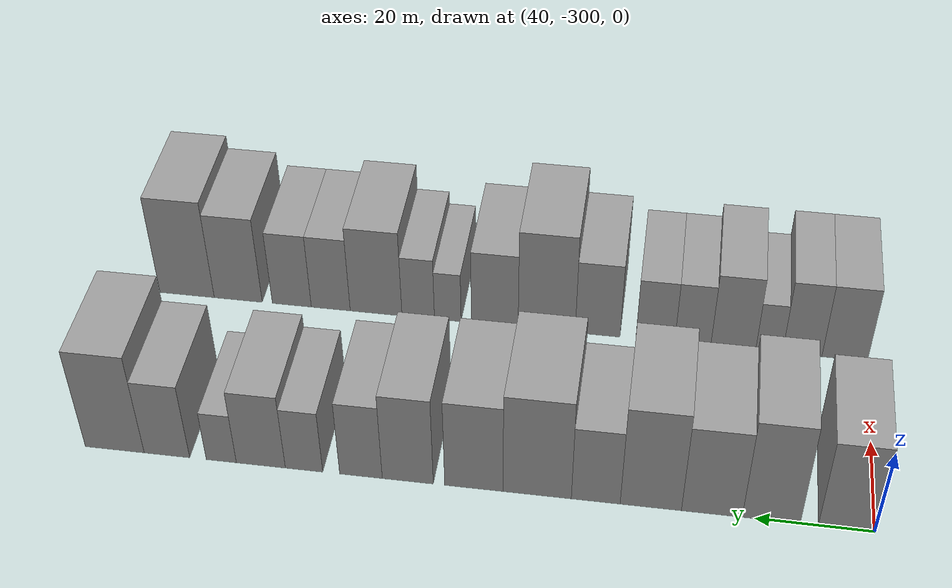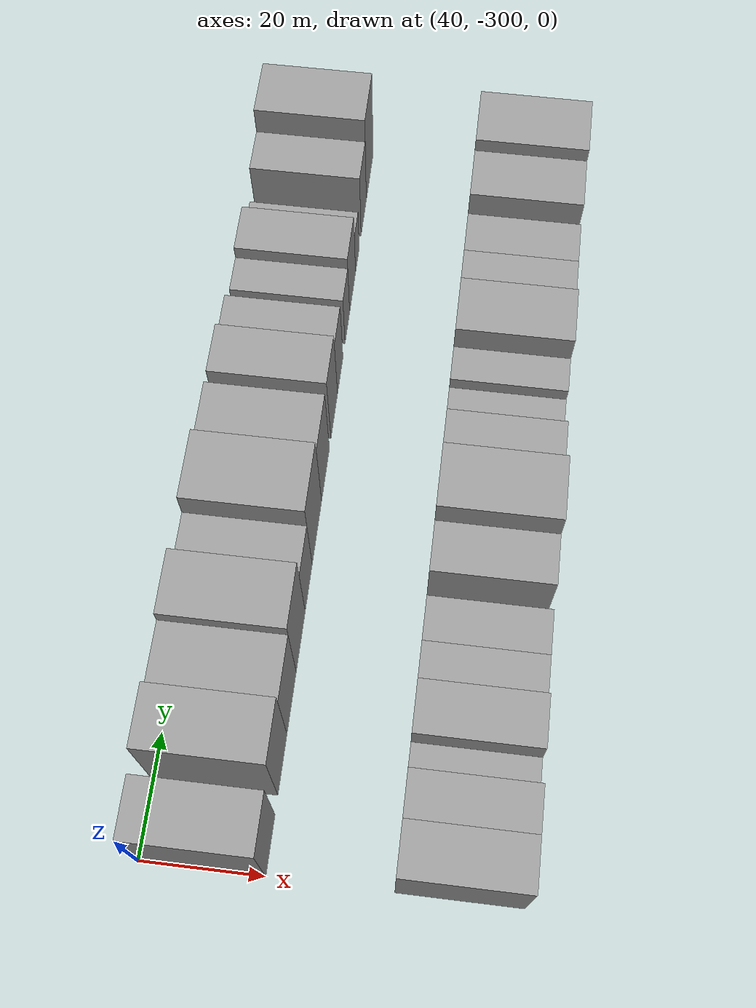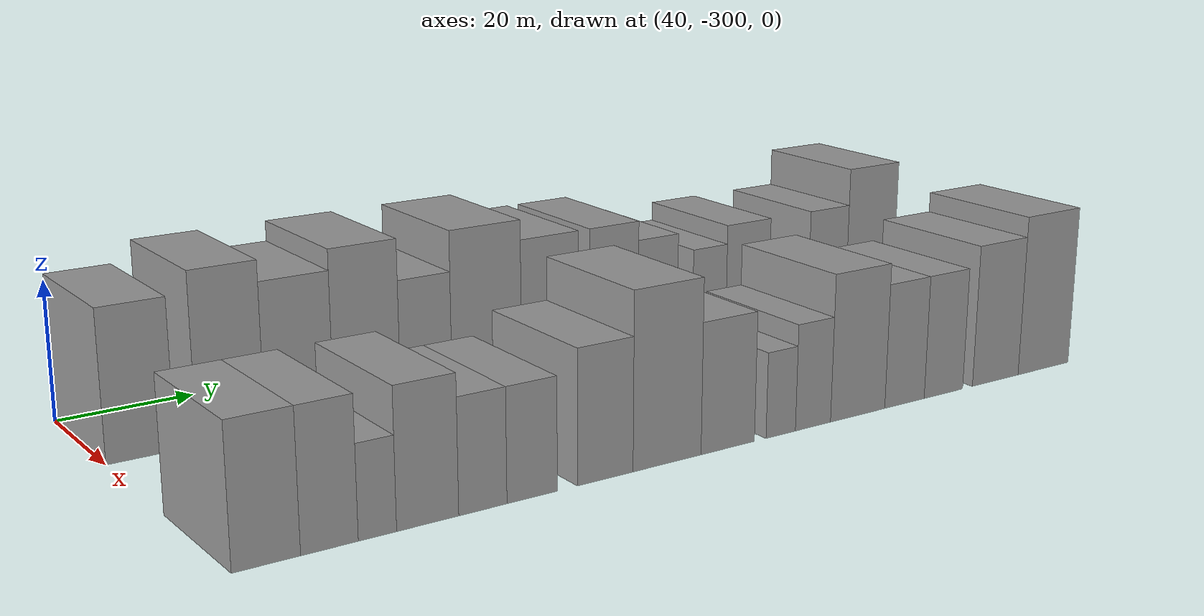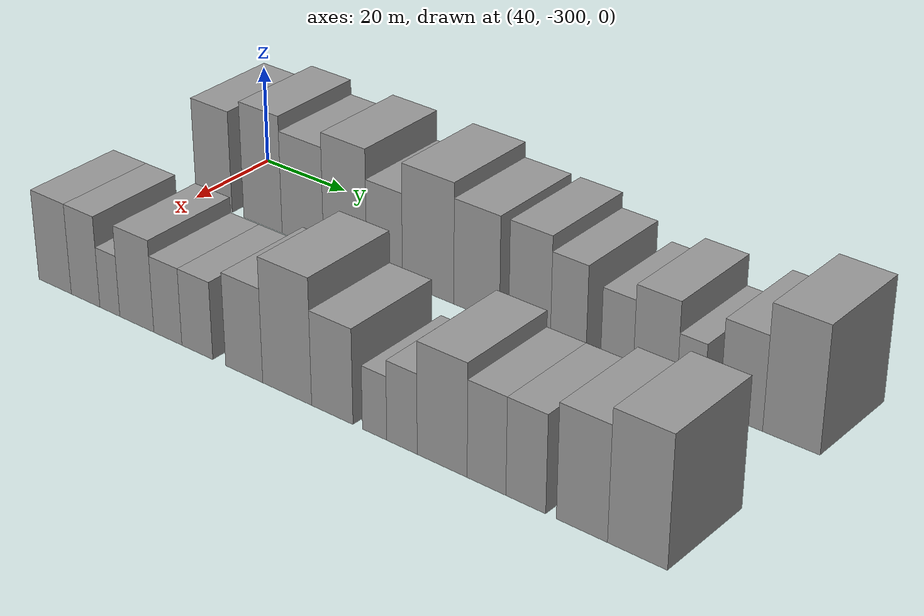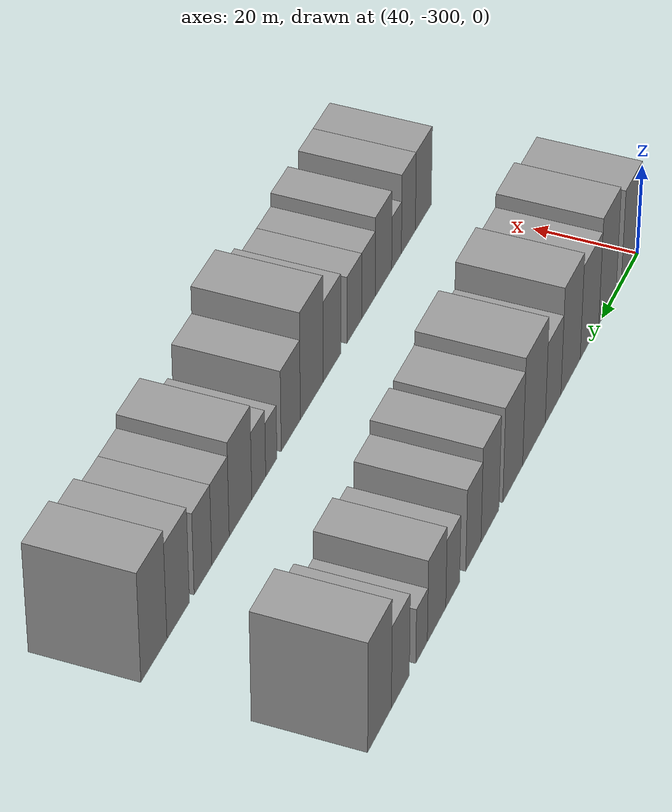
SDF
<sdf version="1.6">
 <world name="default">
  <model name="building_1">
   <static>1</static>
   <pose>50.0000 -295.3019 0 0.000000 0.000000 0.000000</pose>
   <link name="link">
    <pose>0 0 10.50 0 0 0</pose>
    <collision name="collision"><geometry><box><size>20.0000 9.3963 21.0000</size></box></geometry></collision>
    <visual name="visual">
     <cast_shadows>0</cast_shadows>
     <geometry><box><size>20.0000 9.3963 21.0000</size></box></geometry>
     <material>
      <script>
       <uri>model://grey_wall/materials/scripts</uri>
       <uri>model://grey_wall/materials/textures</uri>
       <name>vrc/grey_wall</name>
      </script>
     </material>
    </visual>
   </link>
  </model>
  <model name="building_2">
   <static>1</static>
   <pose>50.0000 -282.7249 0 0.000000 0.000000 0.000000</pose>
   <link name="link">
    <pose>0 0 12.00 0 0 0</pose>
    <collision name="collision"><geometry><box><size>20.0000 9.7576 24.0000</size></box></geometry></collision>
    <visual name="visual">
     <cast_shadows>0</cast_shadows>
     <geometry><box><size>20.0000 9.7576 24.0000</size></box></geometry>
     <material>
      <script>
       <uri>model://grey_wall/materials/scripts</uri>
       <uri>model://grey_wall/materials/textures</uri>
       <name>vrc/grey_wall</name>
      </script>
     </material>
    </visual>
   </link>
  </model>
  <model name="building_3">
   <static>1</static>
   <pose>50.0000 -272.7034 0 0.000000 0.000000 0.000000</pose>
   <link name="link">
    <pose>0 0 10.50 0 0 0</pose>
    <collision name="collision"><geometry><box><size>20.0000 10.2854 21.0000</size></box></geometry></collision>
    <visual name="visual">
     <cast_shadows>0</cast_shadows>
     <geometry><box><size>20.0000 10.2854 21.0000</size></box></geometry>
     <material>
      <script>
       <uri>model://grey_wall/materials/scripts</uri>
       <uri>model://grey_wall/materials/textures</uri>
       <name>vrc/grey_wall</name>
      </script>
     </material>
    </visual>
   </link>
  </model>
  <model name="building_4">
   <static>1</static>
   <pose>50.0000 -262.3470 0 0.000000 0.000000 0.000000</pose>
   <link name="link">
    <pose>0 0 12.00 0 0 0</pose>
    <collision name="collision"><geometry><box><size>20.0000 10.4274 24.0000</size></box></geometry></collision>
    <visual name="visual">
     <cast_shadows>0</cast_shadows>
     <geometry><box><size>20.0000 10.4274 24.0000</size></box></geometry>
     <material>
      <script>
       <uri>model://grey_wall/materials/scripts</uri>
       <uri>model://grey_wall/materials/textures</uri>
       <name>vrc/grey_wall</name>
      </script>
     </material>
    </visual>
   </link>
  </model>
  <model name="building_5">
   <static>1</static>
   <pose>50.0000 -252.9480 0 0.000000 0.000000 0.000000</pose>
   <link name="link">
    <pose>0 0 9.00 0 0 0</pose>
    <collision name="collision"><geometry><box><size>20.0000 8.3706 18.0000</size></box></geometry></collision>
    <visual name="visual">
     <cast_shadows>0</cast_shadows>
     <geometry><box><size>20.0000 8.3706 18.0000</size></box></geometry>
     <material>
      <script>
       <uri>model://grey_wall/materials/scripts</uri>
       <uri>model://grey_wall/materials/textures</uri>
       <name>vrc/grey_wall</name>
      </script>
     </material>
    </visual>
   </link>
  </model>
  <model name="building_6">
   <static>1</static>
   <pose>50.0000 -242.8675 0 0.000000 0.000000 0.000000</pose>
   <link name="link">
    <pose>0 0 12.00 0 0 0</pose>
    <collision name="collision"><geometry><box><size>20.0000 11.7904 24.0000</size></box></geometry></collision>
    <visual name="visual">
     <cast_shadows>0</cast_shadows>
     <geometry><box><size>20.0000 11.7904 24.0000</size></box></geometry>
     <material>
      <script>
       <uri>model://grey_wall/materials/scripts</uri>
       <uri>model://grey_wall/materials/textures</uri>
       <name>vrc/grey_wall</name>
      </script>
     </material>
    </visual>
   </link>
  </model>
  <model name="building_7">
   <static>1</static>
   <pose>50.0000 -231.9022 0 0.000000 0.000000 0.000000</pose>
   <link name="link">
    <pose>0 0 10.50 0 0 0</pose>
    <collision name="collision"><geometry><box><size>20.0000 10.1402 21.0000</size></box></geometry></collision>
    <visual name="visual">
     <cast_shadows>0</cast_shadows>
     <geometry><box><size>20.0000 10.1402 21.0000</size></box></geometry>
     <material>
      <script>
       <uri>model://grey_wall/materials/scripts</uri>
       <uri>model://grey_wall/materials/textures</uri>
       <name>vrc/grey_wall</name>
      </script>
     </material>
    </visual>
   </link>
  </model>
  <model name="building_8">
   <static>1</static>
   <pose>50.0000 -220.3504 0 0.000000 0.000000 0.000000</pose>
   <link name="link">
    <pose>0 0 10.50 0 0 0</pose>
    <collision name="collision"><geometry><box><size>20.0000 8.9634 21.0000</size></box></geometry></collision>
    <visual name="visual">
     <cast_shadows>0</cast_shadows>
     <geometry><box><size>20.0000 8.9634 21.0000</size></box></geometry>
     <material>
      <script>
       <uri>model://grey_wall/materials/scripts</uri>
       <uri>model://grey_wall/materials/textures</uri>
       <name>vrc/grey_wall</name>
      </script>
     </material>
    </visual>
   </link>
  </model>
  <model name="building_9">
   <static>1</static>
   <pose>50.0000 -212.1136 0 0.000000 0.000000 0.000000</pose>
   <link name="link">
    <pose>0 0 9.00 0 0 0</pose>
    <collision name="collision"><geometry><box><size>20.0000 7.5102 18.0000</size></box></geometry></collision>
    <visual name="visual">
     <cast_shadows>0</cast_shadows>
     <geometry><box><size>20.0000 7.5102 18.0000</size></box></geometry>
     <material>
      <script>
       <uri>model://grey_wall/materials/scripts</uri>
       <uri>model://grey_wall/materials/textures</uri>
       <name>vrc/grey_wall</name>
      </script>
     </material>
    </visual>
   </link>
  </model>
  <model name="building_10">
   <static>1</static>
   <pose>50.0000 -202.0355 0 0.000000 0.000000 0.000000</pose>
   <link name="link">
    <pose>0 0 7.50 0 0 0</pose>
    <collision name="collision"><geometry><box><size>20.0000 6.6459 15.0000</size></box></geometry></collision>
    <visual name="visual">
     <cast_shadows>0</cast_shadows>
     <geometry><box><size>20.0000 6.6459 15.0000</size></box></geometry>
     <material>
      <script>
       <uri>model://grey_wall/materials/scripts</uri>
       <uri>model://grey_wall/materials/textures</uri>
       <name>vrc/grey_wall</name>
      </script>
     </material>
    </visual>
   </link>
  </model>
  <model name="building_11">
   <static>1</static>
   <pose>50.0000 -194.3298 0 0.000000 0.000000 0.000000</pose>
   <link name="link">
    <pose>0 0 9.00 0 0 0</pose>
    <collision name="collision"><geometry><box><size>20.0000 8.7655 18.0000</size></box></geometry></collision>
    <visual name="visual">
     <cast_shadows>0</cast_shadows>
     <geometry><box><size>20.0000 8.7655 18.0000</size></box></geometry>
     <material>
      <script>
       <uri>model://grey_wall/materials/scripts</uri>
       <uri>model://grey_wall/materials/textures</uri>
       <name>vrc/grey_wall</name>
      </script>
     </material>
    </visual>
   </link>
  </model>
  <model name="building_12">
   <static>1</static>
   <pose>50.0000 -187.2509 0 0.000000 0.000000 0.000000</pose>
   <link name="link">
    <pose>0 0 6.00 0 0 0</pose>
    <collision name="collision"><geometry><box><size>20.0000 5.3923 12.0000</size></box></geometry></collision>
    <visual name="visual">
     <cast_shadows>0</cast_shadows>
     <geometry><box><size>20.0000 5.3923 12.0000</size></box></geometry>
     <material>
      <script>
       <uri>model://grey_wall/materials/scripts</uri>
       <uri>model://grey_wall/materials/textures</uri>
       <name>vrc/grey_wall</name>
      </script>
     </material>
    </visual>
   </link>
  </model>
  <model name="building_13">
   <static>1</static>
   <pose>50.0000 -177.4368 0 0.000000 0.000000 0.000000</pose>
   <link name="link">
    <pose>0 0 9.00 0 0 0</pose>
    <collision name="collision"><geometry><box><size>20.0000 8.2360 18.0000</size></box></geometry></collision>
    <visual name="visual">
     <cast_shadows>0</cast_shadows>
     <geometry><box><size>20.0000 8.2360 18.0000</size></box></geometry>
     <material>
      <script>
       <uri>model://grey_wall/materials/scripts</uri>
       <uri>model://grey_wall/materials/textures</uri>
       <name>vrc/grey_wall</name>
      </script>
     </material>
    </visual>
   </link>
  </model>
  <model name="building_14">
   <static>1</static>
   <pose>50.0000 -167.9649 0 0.000000 0.000000 0.000000</pose>
   <link name="link">
    <pose>0 0 12.00 0 0 0</pose>
    <collision name="collision"><geometry><box><size>20.0000 10.7077 24.0000</size></box></geometry></collision>
    <visual name="visual">
     <cast_shadows>0</cast_shadows>
     <geometry><box><size>20.0000 10.7077 24.0000</size></box></geometry>
     <material>
      <script>
       <uri>model://grey_wall/materials/scripts</uri>
       <uri>model://grey_wall/materials/textures</uri>
       <name>vrc/grey_wall</name>
      </script>
     </material>
    </visual>
   </link>
  </model>
  <model name="building_59">
   <static>1</static>
   <pose>90.0000 -295.8047 0 0.000000 0.000000 0.000000</pose>
   <link name="link">
    <pose>0 0 9.00 0 0 0</pose>
    <collision name="collision"><geometry><box><size>20.0000 8.3906 18.0000</size></box></geometry></collision>
    <visual name="visual">
     <cast_shadows>0</cast_shadows>
     <geometry><box><size>20.0000 8.3906 18.0000</size></box></geometry>
     <material>
      <script>
       <uri>model://grey_wall/materials/scripts</uri>
       <uri>model://grey_wall/materials/textures</uri>
       <name>vrc/grey_wall</name>
      </script>
     </material>
    </visual>
   </link>
  </model>
  <model name="building_60">
   <static>1</static>
   <pose>90.0000 -287.9691 0 0.000000 0.000000 0.000000</pose>
   <link name="link">
    <pose>0 0 9.00 0 0 0</pose>
    <collision name="collision"><geometry><box><size>20.0000 7.2805 18.0000</size></box></geometry></collision>
    <visual name="visual">
     <cast_shadows>0</cast_shadows>
     <geometry><box><size>20.0000 7.2805 18.0000</size></box></geometry>
     <material>
      <script>
       <uri>model://grey_wall/materials/scripts</uri>
       <uri>model://grey_wall/materials/textures</uri>
       <name>vrc/grey_wall</name>
      </script>
     </material>
    </visual>
   </link>
  </model>
  <model name="building_61">
   <static>1</static>
   <pose>90.0000 -281.8356 0 0.000000 0.000000 0.000000</pose>
   <link name="link">
    <pose>0 0 6.00 0 0 0</pose>
    <collision name="collision"><geometry><box><size>20.0000 4.9866 12.0000</size></box></geometry></collision>
    <visual name="visual">
     <cast_shadows>0</cast_shadows>
     <geometry><box><size>20.0000 4.9866 12.0000</size></box></geometry>
     <material>
      <script>
       <uri>model://grey_wall/materials/scripts</uri>
       <uri>model://grey_wall/materials/textures</uri>
       <name>vrc/grey_wall</name>
      </script>
     </material>
    </visual>
   </link>
  </model>
  <model name="building_62">
   <static>1</static>
   <pose>90.0000 -275.1544 0 0.000000 0.000000 0.000000</pose>
   <link name="link">
    <pose>0 0 9.00 0 0 0</pose>
    <collision name="collision"><geometry><box><size>20.0000 8.3758 18.0000</size></box></geometry></collision>
    <visual name="visual">
     <cast_shadows>0</cast_shadows>
     <geometry><box><size>20.0000 8.3758 18.0000</size></box></geometry>
     <material>
      <script>
       <uri>model://grey_wall/materials/scripts</uri>
       <uri>model://grey_wall/materials/textures</uri>
       <name>vrc/grey_wall</name>
      </script>
     </material>
    </visual>
   </link>
  </model>
  <model name="building_63">
   <static>1</static>
   <pose>90.0000 -267.5878 0 0.000000 0.000000 0.000000</pose>
   <link name="link">
    <pose>0 0 7.50 0 0 0</pose>
    <collision name="collision"><geometry><box><size>20.0000 6.7573 15.0000</size></box></geometry></collision>
    <visual name="visual">
     <cast_shadows>0</cast_shadows>
     <geometry><box><size>20.0000 6.7573 15.0000</size></box></geometry>
     <material>
      <script>
       <uri>model://grey_wall/materials/scripts</uri>
       <uri>model://grey_wall/materials/textures</uri>
       <name>vrc/grey_wall</name>
      </script>
     </material>
    </visual>
   </link>
  </model>
  <model name="building_64">
   <static>1</static>
   <pose>90.0000 -260.5547 0 0.000000 0.000000 0.000000</pose>
   <link name="link">
    <pose>0 0 7.50 0 0 0</pose>
    <collision name="collision"><geometry><box><size>20.0000 7.3090 15.0000</size></box></geometry></collision>
    <visual name="visual">
     <cast_shadows>0</cast_shadows>
     <geometry><box><size>20.0000 7.3090 15.0000</size></box></geometry>
     <material>
      <script>
       <uri>model://grey_wall/materials/scripts</uri>
       <uri>model://grey_wall/materials/textures</uri>
       <name>vrc/grey_wall</name>
      </script>
     </material>
    </visual>
   </link>
  </model>
  <model name="building_65">
   <static>1</static>
   <pose>90.0000 -249.6534 0 0.000000 0.000000 0.000000</pose>
   <link name="link">
    <pose>0 0 9.00 0 0 0</pose>
    <collision name="collision"><geometry><box><size>20.0000 8.4936 18.0000</size></box></geometry></collision>
    <visual name="visual">
     <cast_shadows>0</cast_shadows>
     <geometry><box><size>20.0000 8.4936 18.0000</size></box></geometry>
     <material>
      <script>
       <uri>model://grey_wall/materials/scripts</uri>
       <uri>model://grey_wall/materials/textures</uri>
       <name>vrc/grey_wall</name>
      </script>
     </material>
    </visual>
   </link>
  </model>
  <model name="building_66">
   <static>1</static>
   <pose>90.0000 -239.9584 0 0.000000 0.000000 0.000000</pose>
   <link name="link">
    <pose>0 0 12.00 0 0 0</pose>
    <collision name="collision"><geometry><box><size>20.0000 10.8964 24.0000</size></box></geometry></collision>
    <visual name="visual">
     <cast_shadows>0</cast_shadows>
     <geometry><box><size>20.0000 10.8964 24.0000</size></box></geometry>
     <material>
      <script>
       <uri>model://grey_wall/materials/scripts</uri>
       <uri>model://grey_wall/materials/textures</uri>
       <name>vrc/grey_wall</name>
      </script>
     </material>
    </visual>
   </link>
  </model>
  <model name="building_67">
   <static>1</static>
   <pose>90.0000 -230.0324 0 0.000000 0.000000 0.000000</pose>
   <link name="link">
    <pose>0 0 9.00 0 0 0</pose>
    <collision name="collision"><geometry><box><size>20.0000 8.9557 18.0000</size></box></geometry></collision>
    <visual name="visual">
     <cast_shadows>0</cast_shadows>
     <geometry><box><size>20.0000 8.9557 18.0000</size></box></geometry>
     <material>
      <script>
       <uri>model://grey_wall/materials/scripts</uri>
       <uri>model://grey_wall/materials/textures</uri>
       <name>vrc/grey_wall</name>
      </script>
     </material>
    </visual>
   </link>
  </model>
  <model name="building_68">
   <static>1</static>
   <pose>90.0000 -220.9861 0 0.000000 0.000000 0.000000</pose>
   <link name="link">
    <pose>0 0 6.00 0 0 0</pose>
    <collision name="collision"><geometry><box><size>20.0000 5.1369 12.0000</size></box></geometry></collision>
    <visual name="visual">
     <cast_shadows>0</cast_shadows>
     <geometry><box><size>20.0000 5.1369 12.0000</size></box></geometry>
     <material>
      <script>
       <uri>model://grey_wall/materials/scripts</uri>
       <uri>model://grey_wall/materials/textures</uri>
       <name>vrc/grey_wall</name>
      </script>
     </material>
    </visual>
   </link>
  </model>
  <model name="building_69">
   <static>1</static>
   <pose>90.0000 -215.2652 0 0.000000 0.000000 0.000000</pose>
   <link name="link">
    <pose>0 0 7.50 0 0 0</pose>
    <collision name="collision"><geometry><box><size>20.0000 6.3049 15.0000</size></box></geometry></collision>
    <visual name="visual">
     <cast_shadows>0</cast_shadows>
     <geometry><box><size>20.0000 6.3049 15.0000</size></box></geometry>
     <material>
      <script>
       <uri>model://grey_wall/materials/scripts</uri>
       <uri>model://grey_wall/materials/textures</uri>
       <name>vrc/grey_wall</name>
      </script>
     </material>
    </visual>
   </link>
  </model>
  <model name="building_70">
   <static>1</static>
   <pose>90.0000 -207.0639 0 0.000000 0.000000 0.000000</pose>
   <link name="link">
    <pose>0 0 10.50 0 0 0</pose>
    <collision name="collision"><geometry><box><size>20.0000 10.0977 21.0000</size></box></geometry></collision>
    <visual name="visual">
     <cast_shadows>0</cast_shadows>
     <geometry><box><size>20.0000 10.0977 21.0000</size></box></geometry>
     <material>
      <script>
       <uri>model://grey_wall/materials/scripts</uri>
       <uri>model://grey_wall/materials/textures</uri>
       <name>vrc/grey_wall</name>
      </script>
     </material>
    </visual>
   </link>
  </model>
  <model name="building_71">
   <static>1</static>
   <pose>90.0000 -198.2027 0 0.000000 0.000000 0.000000</pose>
   <link name="link">
    <pose>0 0 9.00 0 0 0</pose>
    <collision name="collision"><geometry><box><size>20.0000 7.6246 18.0000</size></box></geometry></collision>
    <visual name="visual">
     <cast_shadows>0</cast_shadows>
     <geometry><box><size>20.0000 7.6246 18.0000</size></box></geometry>
     <material>
      <script>
       <uri>model://grey_wall/materials/scripts</uri>
       <uri>model://grey_wall/materials/textures</uri>
       <name>vrc/grey_wall</name>
      </script>
     </material>
    </visual>
   </link>
  </model>
  <model name="building_72">
   <static>1</static>
   <pose>90.0000 -190.5527 0 0.000000 0.000000 0.000000</pose>
   <link name="link">
    <pose>0 0 9.00 0 0 0</pose>
    <collision name="collision"><geometry><box><size>20.0000 7.6754 18.0000</size></box></geometry></collision>
    <visual name="visual">
     <cast_shadows>0</cast_shadows>
     <geometry><box><size>20.0000 7.6754 18.0000</size></box></geometry>
     <material>
      <script>
       <uri>model://grey_wall/materials/scripts</uri>
       <uri>model://grey_wall/materials/textures</uri>
       <name>vrc/grey_wall</name>
      </script>
     </material>
    </visual>
   </link>
  </model>
  <model name="building_73">
   <static>1</static>
   <pose>90.0000 -179.9525 0 0.000000 0.000000 0.000000</pose>
   <link name="link">
    <pose>0 0 10.50 0 0 0</pose>
    <collision name="collision"><geometry><box><size>20.0000 9.5250 21.0000</size></box></geometry></collision>
    <visual name="visual">
     <cast_shadows>0</cast_shadows>
     <geometry><box><size>20.0000 9.5250 21.0000</size></box></geometry>
     <material>
      <script>
       <uri>model://grey_wall/materials/scripts</uri>
       <uri>model://grey_wall/materials/textures</uri>
       <name>vrc/grey_wall</name>
      </script>
     </material>
    </visual>
   </link>
  </model>
  <model name="building_74">
   <static>1</static>
   <pose>90.0000 -169.7676 0 0.000000 0.000000 0.000000</pose>
   <link name="link">
    <pose>0 0 12.00 0 0 0</pose>
    <collision name="collision"><geometry><box><size>20.0000 10.8448 24.0000</size></box></geometry></collision>
    <visual name="visual">
     <cast_shadows>0</cast_shadows>
     <geometry><box><size>20.0000 10.8448 24.0000</size></box></geometry>
     <material>
      <script>
       <uri>model://grey_wall/materials/scripts</uri>
       <uri>model://grey_wall/materials/textures</uri>
       <name>vrc/grey_wall</name>
      </script>
     </material>
    </visual>
   </link>
  </model>
 </world>
</sdf>
